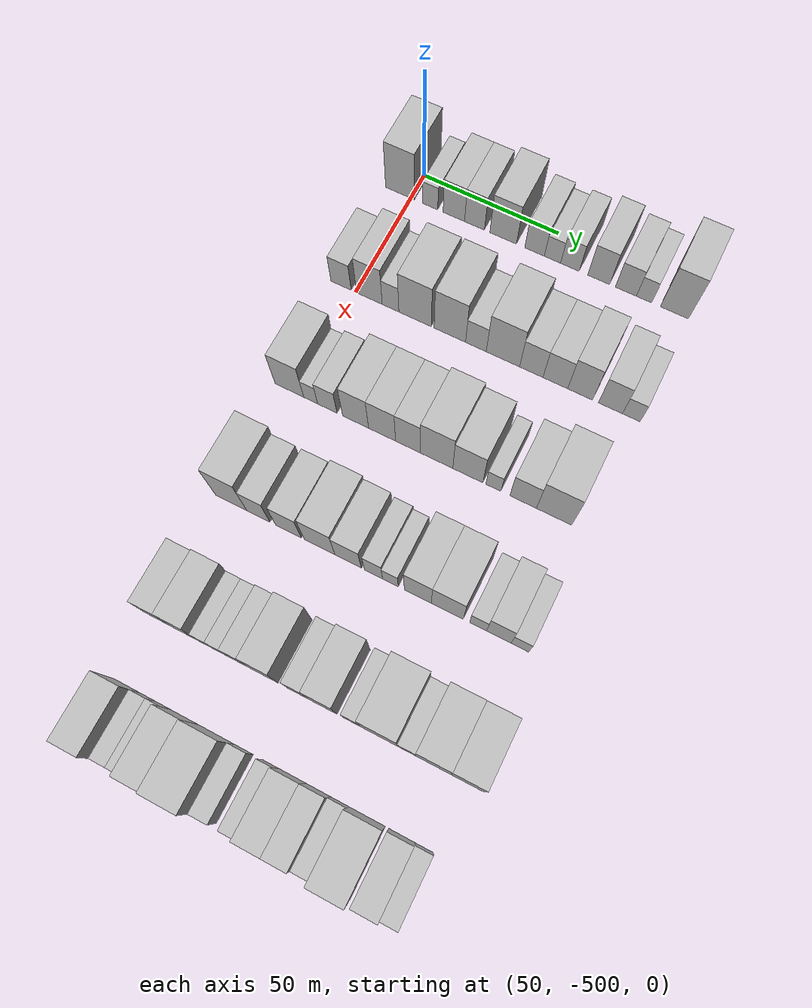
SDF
<sdf version="1.6">
 <world name="default">
  <model name="building_13">
   <static>1</static>
   <pose>50.0000 -504.2278 0 0.000000 0.000000 0.000000</pose>
   <link name="link">
    <pose>0 0 12.00 0 0 0</pose>
    <collision name="collision"><geometry><box><size>20.0000 11.0009 24.0000</size></box></geometry></collision>
    <visual name="visual">
     <cast_shadows>0</cast_shadows>
     <geometry><box><size>20.0000 11.0009 24.0000</size></box></geometry>
     <material>
      <script>
       <uri>model://HANNAS_wall/materials/scripts</uri>
       <uri>model://HANNAS_wall/materials/textures</uri>
       <name>vrc/HANNAS_wall</name>
      </script>
     </material>
    </visual>
   </link>
  </model>
  <model name="building_14">
   <static>1</static>
   <pose>50.0000 -492.8610 0 0.000000 0.000000 0.000000</pose>
   <link name="link">
    <pose>0 0 6.00 0 0 0</pose>
    <collision name="collision"><geometry><box><size>20.0000 5.7326 12.0000</size></box></geometry></collision>
    <visual name="visual">
     <cast_shadows>0</cast_shadows>
     <geometry><box><size>20.0000 5.7326 12.0000</size></box></geometry>
     <material>
      <script>
       <uri>model://HANNAS_wall/materials/scripts</uri>
       <uri>model://HANNAS_wall/materials/textures</uri>
       <name>vrc/HANNAS_wall</name>
      </script>
     </material>
    </visual>
   </link>
  </model>
  <model name="building_15">
   <static>1</static>
   <pose>50.0000 -483.9732 0 0.000000 0.000000 0.000000</pose>
   <link name="link">
    <pose>0 0 9.00 0 0 0</pose>
    <collision name="collision"><geometry><box><size>20.0000 8.0430 18.0000</size></box></geometry></collision>
    <visual name="visual">
     <cast_shadows>0</cast_shadows>
     <geometry><box><size>20.0000 8.0430 18.0000</size></box></geometry>
     <material>
      <script>
       <uri>model://HANNAS_wall/materials/scripts</uri>
       <uri>model://HANNAS_wall/materials/textures</uri>
       <name>vrc/HANNAS_wall</name>
      </script>
     </material>
    </visual>
   </link>
  </model>
  <model name="building_16">
   <static>1</static>
   <pose>50.0000 -476.2704 0 0.000000 0.000000 0.000000</pose>
   <link name="link">
    <pose>0 0 9.00 0 0 0</pose>
    <collision name="collision"><geometry><box><size>20.0000 7.3626 18.0000</size></box></geometry></collision>
    <visual name="visual">
     <cast_shadows>0</cast_shadows>
     <geometry><box><size>20.0000 7.3626 18.0000</size></box></geometry>
     <material>
      <script>
       <uri>model://HANNAS_wall/materials/scripts</uri>
       <uri>model://HANNAS_wall/materials/textures</uri>
       <name>vrc/HANNAS_wall</name>
      </script>
     </material>
    </visual>
   </link>
  </model>
  <model name="building_17">
   <static>1</static>
   <pose>50.0000 -465.6922 0 0.000000 0.000000 0.000000</pose>
   <link name="link">
    <pose>0 0 10.50 0 0 0</pose>
    <collision name="collision"><geometry><box><size>20.0000 9.7939 21.0000</size></box></geometry></collision>
    <visual name="visual">
     <cast_shadows>0</cast_shadows>
     <geometry><box><size>20.0000 9.7939 21.0000</size></box></geometry>
     <material>
      <script>
       <uri>model://HANNAS_wall/materials/scripts</uri>
       <uri>model://HANNAS_wall/materials/textures</uri>
       <name>vrc/HANNAS_wall</name>
      </script>
     </material>
    </visual>
   </link>
  </model>
  <model name="building_18">
   <static>1</static>
   <pose>50.0000 -454.2180 0 0.000000 0.000000 0.000000</pose>
   <link name="link">
    <pose>0 0 7.50 0 0 0</pose>
    <collision name="collision"><geometry><box><size>20.0000 7.1545 15.0000</size></box></geometry></collision>
    <visual name="visual">
     <cast_shadows>0</cast_shadows>
     <geometry><box><size>20.0000 7.1545 15.0000</size></box></geometry>
     <material>
      <script>
       <uri>model://HANNAS_wall/materials/scripts</uri>
       <uri>model://HANNAS_wall/materials/textures</uri>
       <name>vrc/HANNAS_wall</name>
      </script>
     </material>
    </visual>
   </link>
  </model>
  <model name="building_19">
   <static>1</static>
   <pose>50.0000 -447.7025 0 0.000000 0.000000 0.000000</pose>
   <link name="link">
    <pose>0 0 6.00 0 0 0</pose>
    <collision name="collision"><geometry><box><size>20.0000 5.8765 12.0000</size></box></geometry></collision>
    <visual name="visual">
     <cast_shadows>0</cast_shadows>
     <geometry><box><size>20.0000 5.8765 12.0000</size></box></geometry>
     <material>
      <script>
       <uri>model://HANNAS_wall/materials/scripts</uri>
       <uri>model://HANNAS_wall/materials/textures</uri>
       <name>vrc/HANNAS_wall</name>
      </script>
     </material>
    </visual>
   </link>
  </model>
  <model name="building_20">
   <static>1</static>
   <pose>50.0000 -441.4092 0 0.000000 0.000000 0.000000</pose>
   <link name="link">
    <pose>0 0 7.50 0 0 0</pose>
    <collision name="collision"><geometry><box><size>20.0000 6.7101 15.0000</size></box></geometry></collision>
    <visual name="visual">
     <cast_shadows>0</cast_shadows>
     <geometry><box><size>20.0000 6.7101 15.0000</size></box></geometry>
     <material>
      <script>
       <uri>model://HANNAS_wall/materials/scripts</uri>
       <uri>model://HANNAS_wall/materials/textures</uri>
       <name>vrc/HANNAS_wall</name>
      </script>
     </material>
    </visual>
   </link>
  </model>
  <model name="building_21">
   <static>1</static>
   <pose>50.0000 -431.1350 0 0.000000 0.000000 0.000000</pose>
   <link name="link">
    <pose>0 0 9.00 0 0 0</pose>
    <collision name="collision"><geometry><box><size>20.0000 7.8383 18.0000</size></box></geometry></collision>
    <visual name="visual">
     <cast_shadows>0</cast_shadows>
     <geometry><box><size>20.0000 7.8383 18.0000</size></box></geometry>
     <material>
      <script>
       <uri>model://HANNAS_wall/materials/scripts</uri>
       <uri>model://HANNAS_wall/materials/textures</uri>
       <name>vrc/HANNAS_wall</name>
      </script>
     </material>
    </visual>
   </link>
  </model>
  <model name="building_22">
   <static>1</static>
   <pose>50.0000 -421.5041 0 0.000000 0.000000 0.000000</pose>
   <link name="link">
    <pose>0 0 7.50 0 0 0</pose>
    <collision name="collision"><geometry><box><size>20.0000 7.4234 15.0000</size></box></geometry></collision>
    <visual name="visual">
     <cast_shadows>0</cast_shadows>
     <geometry><box><size>20.0000 7.4234 15.0000</size></box></geometry>
     <material>
      <script>
       <uri>model://HANNAS_wall/materials/scripts</uri>
       <uri>model://HANNAS_wall/materials/textures</uri>
       <name>vrc/HANNAS_wall</name>
      </script>
     </material>
    </visual>
   </link>
  </model>
  <model name="building_23">
   <static>1</static>
   <pose>50.0000 -415.0984 0 0.000000 0.000000 0.000000</pose>
   <link name="link">
    <pose>0 0 6.00 0 0 0</pose>
    <collision name="collision"><geometry><box><size>20.0000 5.3878 12.0000</size></box></geometry></collision>
    <visual name="visual">
     <cast_shadows>0</cast_shadows>
     <geometry><box><size>20.0000 5.3878 12.0000</size></box></geometry>
     <material>
      <script>
       <uri>model://HANNAS_wall/materials/scripts</uri>
       <uri>model://HANNAS_wall/materials/textures</uri>
       <name>vrc/HANNAS_wall</name>
      </script>
     </material>
    </visual>
   </link>
  </model>
  <model name="building_24">
   <static>1</static>
   <pose>50.0000 -404.5170 0 0.000000 0.000000 0.000000</pose>
   <link name="link">
    <pose>0 0 12.00 0 0 0</pose>
    <collision name="collision"><geometry><box><size>20.0000 9.7752 24.0000</size></box></geometry></collision>
    <visual name="visual">
     <cast_shadows>0</cast_shadows>
     <geometry><box><size>20.0000 9.7752 24.0000</size></box></geometry>
     <material>
      <script>
       <uri>model://HANNAS_wall/materials/scripts</uri>
       <uri>model://HANNAS_wall/materials/textures</uri>
       <name>vrc/HANNAS_wall</name>
      </script>
     </material>
    </visual>
   </link>
  </model>
  <model name="building_140">
   <static>1</static>
   <pose>90.0000 -505.3310 0 0.000000 0.000000 0.000000</pose>
   <link name="link">
    <pose>0 0 7.50 0 0 0</pose>
    <collision name="collision"><geometry><box><size>20.0000 7.4866 15.0000</size></box></geometry></collision>
    <visual name="visual">
     <cast_shadows>0</cast_shadows>
     <geometry><box><size>20.0000 7.4866 15.0000</size></box></geometry>
     <material>
      <script>
       <uri>model://HANNAS_wall/materials/scripts</uri>
       <uri>model://HANNAS_wall/materials/textures</uri>
       <name>vrc/HANNAS_wall</name>
      </script>
     </material>
    </visual>
   </link>
  </model>
  <model name="building_141">
   <static>1</static>
   <pose>90.0000 -494.8805 0 0.000000 0.000000 0.000000</pose>
   <link name="link">
    <pose>0 0 10.50 0 0 0</pose>
    <collision name="collision"><geometry><box><size>20.0000 9.4144 21.0000</size></box></geometry></collision>
    <visual name="visual">
     <cast_shadows>0</cast_shadows>
     <geometry><box><size>20.0000 9.4144 21.0000</size></box></geometry>
     <material>
      <script>
       <uri>model://HANNAS_wall/materials/scripts</uri>
       <uri>model://HANNAS_wall/materials/textures</uri>
       <name>vrc/HANNAS_wall</name>
      </script>
     </material>
    </visual>
   </link>
  </model>
  <model name="building_142">
   <static>1</static>
   <pose>90.0000 -487.1313 0 0.000000 0.000000 0.000000</pose>
   <link name="link">
    <pose>0 0 7.50 0 0 0</pose>
    <collision name="collision"><geometry><box><size>20.0000 6.0840 15.0000</size></box></geometry></collision>
    <visual name="visual">
     <cast_shadows>0</cast_shadows>
     <geometry><box><size>20.0000 6.0840 15.0000</size></box></geometry>
     <material>
      <script>
       <uri>model://HANNAS_wall/materials/scripts</uri>
       <uri>model://HANNAS_wall/materials/textures</uri>
       <name>vrc/HANNAS_wall</name>
      </script>
     </material>
    </visual>
   </link>
  </model>
  <model name="building_143">
   <static>1</static>
   <pose>90.0000 -478.2230 0 0.000000 0.000000 0.000000</pose>
   <link name="link">
    <pose>0 0 12.00 0 0 0</pose>
    <collision name="collision"><geometry><box><size>20.0000 11.7326 24.0000</size></box></geometry></collision>
    <visual name="visual">
     <cast_shadows>0</cast_shadows>
     <geometry><box><size>20.0000 11.7326 24.0000</size></box></geometry>
     <material>
      <script>
       <uri>model://HANNAS_wall/materials/scripts</uri>
       <uri>model://HANNAS_wall/materials/textures</uri>
       <name>vrc/HANNAS_wall</name>
      </script>
     </material>
    </visual>
   </link>
  </model>
  <model name="building_144">
   <static>1</static>
   <pose>90.0000 -465.7295 0 0.000000 0.000000 0.000000</pose>
   <link name="link">
    <pose>0 0 12.00 0 0 0</pose>
    <collision name="collision"><geometry><box><size>20.0000 11.2543 24.0000</size></box></geometry></collision>
    <visual name="visual">
     <cast_shadows>0</cast_shadows>
     <geometry><box><size>20.0000 11.2543 24.0000</size></box></geometry>
     <material>
      <script>
       <uri>model://HANNAS_wall/materials/scripts</uri>
       <uri>model://HANNAS_wall/materials/textures</uri>
       <name>vrc/HANNAS_wall</name>
      </script>
     </material>
    </visual>
   </link>
  </model>
  <model name="building_145">
   <static>1</static>
   <pose>90.0000 -456.4521 0 0.000000 0.000000 0.000000</pose>
   <link name="link">
    <pose>0 0 7.50 0 0 0</pose>
    <collision name="collision"><geometry><box><size>20.0000 7.3006 15.0000</size></box></geometry></collision>
    <visual name="visual">
     <cast_shadows>0</cast_shadows>
     <geometry><box><size>20.0000 7.3006 15.0000</size></box></geometry>
     <material>
      <script>
       <uri>model://HANNAS_wall/materials/scripts</uri>
       <uri>model://HANNAS_wall/materials/textures</uri>
       <name>vrc/HANNAS_wall</name>
      </script>
     </material>
    </visual>
   </link>
  </model>
  <model name="building_146">
   <static>1</static>
   <pose>90.0000 -446.9369 0 0.000000 0.000000 0.000000</pose>
   <link name="link">
    <pose>0 0 12.00 0 0 0</pose>
    <collision name="collision"><geometry><box><size>20.0000 11.7297 24.0000</size></box></geometry></collision>
    <visual name="visual">
     <cast_shadows>0</cast_shadows>
     <geometry><box><size>20.0000 11.7297 24.0000</size></box></geometry>
     <material>
      <script>
       <uri>model://HANNAS_wall/materials/scripts</uri>
       <uri>model://HANNAS_wall/materials/textures</uri>
       <name>vrc/HANNAS_wall</name>
      </script>
     </material>
    </visual>
   </link>
  </model>
  <model name="building_147">
   <static>1</static>
   <pose>90.0000 -436.9981 0 0.000000 0.000000 0.000000</pose>
   <link name="link">
    <pose>0 0 9.00 0 0 0</pose>
    <collision name="collision"><geometry><box><size>20.0000 8.1479 18.0000</size></box></geometry></collision>
    <visual name="visual">
     <cast_shadows>0</cast_shadows>
     <geometry><box><size>20.0000 8.1479 18.0000</size></box></geometry>
     <material>
      <script>
       <uri>model://HANNAS_wall/materials/scripts</uri>
       <uri>model://HANNAS_wall/materials/textures</uri>
       <name>vrc/HANNAS_wall</name>
      </script>
     </material>
    </visual>
   </link>
  </model>
  <model name="building_148">
   <static>1</static>
   <pose>90.0000 -428.6732 0 0.000000 0.000000 0.000000</pose>
   <link name="link">
    <pose>0 0 9.00 0 0 0</pose>
    <collision name="collision"><geometry><box><size>20.0000 8.5019 18.0000</size></box></geometry></collision>
    <visual name="visual">
     <cast_shadows>0</cast_shadows>
     <geometry><box><size>20.0000 8.5019 18.0000</size></box></geometry>
     <material>
      <script>
       <uri>model://HANNAS_wall/materials/scripts</uri>
       <uri>model://HANNAS_wall/materials/textures</uri>
       <name>vrc/HANNAS_wall</name>
      </script>
     </material>
    </visual>
   </link>
  </model>
  <model name="building_149">
   <static>1</static>
   <pose>90.0000 -420.1610 0 0.000000 0.000000 0.000000</pose>
   <link name="link">
    <pose>0 0 10.50 0 0 0</pose>
    <collision name="collision"><geometry><box><size>20.0000 8.5224 21.0000</size></box></geometry></collision>
    <visual name="visual">
     <cast_shadows>0</cast_shadows>
     <geometry><box><size>20.0000 8.5224 21.0000</size></box></geometry>
     <material>
      <script>
       <uri>model://HANNAS_wall/materials/scripts</uri>
       <uri>model://HANNAS_wall/materials/textures</uri>
       <name>vrc/HANNAS_wall</name>
      </script>
     </material>
    </visual>
   </link>
  </model>
  <model name="building_150">
   <static>1</static>
   <pose>90.0000 -409.8453 0 0.000000 0.000000 0.000000</pose>
   <link name="link">
    <pose>0 0 9.00 0 0 0</pose>
    <collision name="collision"><geometry><box><size>20.0000 8.1091 18.0000</size></box></geometry></collision>
    <visual name="visual">
     <cast_shadows>0</cast_shadows>
     <geometry><box><size>20.0000 8.1091 18.0000</size></box></geometry>
     <material>
      <script>
       <uri>model://HANNAS_wall/materials/scripts</uri>
       <uri>model://HANNAS_wall/materials/textures</uri>
       <name>vrc/HANNAS_wall</name>
      </script>
     </material>
    </visual>
   </link>
  </model>
  <model name="building_151">
   <static>1</static>
   <pose>90.0000 -402.8060 0 0.000000 0.000000 0.000000</pose>
   <link name="link">
    <pose>0 0 6.00 0 0 0</pose>
    <collision name="collision"><geometry><box><size>20.0000 5.9694 12.0000</size></box></geometry></collision>
    <visual name="visual">
     <cast_shadows>0</cast_shadows>
     <geometry><box><size>20.0000 5.9694 12.0000</size></box></geometry>
     <material>
      <script>
       <uri>model://HANNAS_wall/materials/scripts</uri>
       <uri>model://HANNAS_wall/materials/textures</uri>
       <name>vrc/HANNAS_wall</name>
      </script>
     </material>
    </visual>
   </link>
  </model>
  <model name="building_277">
   <static>1</static>
   <pose>130.0000 -502.1205 0 0.000000 0.000000 0.000000</pose>
   <link name="link">
    <pose>0 0 10.50 0 0 0</pose>
    <collision name="collision"><geometry><box><size>20.0000 10.3047 21.0000</size></box></geometry></collision>
    <visual name="visual">
     <cast_shadows>0</cast_shadows>
     <geometry><box><size>20.0000 10.3047 21.0000</size></box></geometry>
     <material>
      <script>
       <uri>model://HANNAS_wall/materials/scripts</uri>
       <uri>model://HANNAS_wall/materials/textures</uri>
       <name>vrc/HANNAS_wall</name>
      </script>
     </material>
    </visual>
   </link>
  </model>
  <model name="building_278">
   <static>1</static>
   <pose>130.0000 -494.4860 0 0.000000 0.000000 0.000000</pose>
   <link name="link">
    <pose>0 0 6.00 0 0 0</pose>
    <collision name="collision"><geometry><box><size>20.0000 4.9641 12.0000</size></box></geometry></collision>
    <visual name="visual">
     <cast_shadows>0</cast_shadows>
     <geometry><box><size>20.0000 4.9641 12.0000</size></box></geometry>
     <material>
      <script>
       <uri>model://HANNAS_wall/materials/scripts</uri>
       <uri>model://HANNAS_wall/materials/textures</uri>
       <name>vrc/HANNAS_wall</name>
      </script>
     </material>
    </visual>
   </link>
  </model>
  <model name="building_279">
   <static>1</static>
   <pose>130.0000 -488.5637 0 0.000000 0.000000 0.000000</pose>
   <link name="link">
    <pose>0 0 7.50 0 0 0</pose>
    <collision name="collision"><geometry><box><size>20.0000 6.8806 15.0000</size></box></geometry></collision>
    <visual name="visual">
     <cast_shadows>0</cast_shadows>
     <geometry><box><size>20.0000 6.8806 15.0000</size></box></geometry>
     <material>
      <script>
       <uri>model://HANNAS_wall/materials/scripts</uri>
       <uri>model://HANNAS_wall/materials/textures</uri>
       <name>vrc/HANNAS_wall</name>
      </script>
     </material>
    </visual>
   </link>
  </model>
  <model name="building_280">
   <static>1</static>
   <pose>130.0000 -478.5686 0 0.000000 0.000000 0.000000</pose>
   <link name="link">
    <pose>0 0 10.50 0 0 0</pose>
    <collision name="collision"><geometry><box><size>20.0000 9.1095 21.0000</size></box></geometry></collision>
    <visual name="visual">
     <cast_shadows>0</cast_shadows>
     <geometry><box><size>20.0000 9.1095 21.0000</size></box></geometry>
     <material>
      <script>
       <uri>model://HANNAS_wall/materials/scripts</uri>
       <uri>model://HANNAS_wall/materials/textures</uri>
       <name>vrc/HANNAS_wall</name>
      </script>
     </material>
    </visual>
   </link>
  </model>
  <model name="building_281">
   <static>1</static>
   <pose>130.0000 -469.3165 0 0.000000 0.000000 0.000000</pose>
   <link name="link">
    <pose>0 0 10.50 0 0 0</pose>
    <collision name="collision"><geometry><box><size>20.0000 9.3947 21.0000</size></box></geometry></collision>
    <visual name="visual">
     <cast_shadows>0</cast_shadows>
     <geometry><box><size>20.0000 9.3947 21.0000</size></box></geometry>
     <material>
      <script>
       <uri>model://HANNAS_wall/materials/scripts</uri>
       <uri>model://HANNAS_wall/materials/textures</uri>
       <name>vrc/HANNAS_wall</name>
      </script>
     </material>
    </visual>
   </link>
  </model>
  <model name="building_282">
   <static>1</static>
   <pose>130.0000 -460.3309 0 0.000000 0.000000 0.000000</pose>
   <link name="link">
    <pose>0 0 10.50 0 0 0</pose>
    <collision name="collision"><geometry><box><size>20.0000 8.5766 21.0000</size></box></geometry></collision>
    <visual name="visual">
     <cast_shadows>0</cast_shadows>
     <geometry><box><size>20.0000 8.5766 21.0000</size></box></geometry>
     <material>
      <script>
       <uri>model://HANNAS_wall/materials/scripts</uri>
       <uri>model://HANNAS_wall/materials/textures</uri>
       <name>vrc/HANNAS_wall</name>
      </script>
     </material>
    </visual>
   </link>
  </model>
  <model name="building_283">
   <static>1</static>
   <pose>130.0000 -450.5161 0 0.000000 0.000000 0.000000</pose>
   <link name="link">
    <pose>0 0 12.00 0 0 0</pose>
    <collision name="collision"><geometry><box><size>20.0000 11.0530 24.0000</size></box></geometry></collision>
    <visual name="visual">
     <cast_shadows>0</cast_shadows>
     <geometry><box><size>20.0000 11.0530 24.0000</size></box></geometry>
     <material>
      <script>
       <uri>model://HANNAS_wall/materials/scripts</uri>
       <uri>model://HANNAS_wall/materials/textures</uri>
       <name>vrc/HANNAS_wall</name>
      </script>
     </material>
    </visual>
   </link>
  </model>
  <model name="building_284">
   <static>1</static>
   <pose>130.0000 -439.8883 0 0.000000 0.000000 0.000000</pose>
   <link name="link">
    <pose>0 0 10.50 0 0 0</pose>
    <collision name="collision"><geometry><box><size>20.0000 10.2027 21.0000</size></box></geometry></collision>
    <visual name="visual">
     <cast_shadows>0</cast_shadows>
     <geometry><box><size>20.0000 10.2027 21.0000</size></box></geometry>
     <material>
      <script>
       <uri>model://HANNAS_wall/materials/scripts</uri>
       <uri>model://HANNAS_wall/materials/textures</uri>
       <name>vrc/HANNAS_wall</name>
      </script>
     </material>
    </visual>
   </link>
  </model>
  <model name="building_285">
   <static>1</static>
   <pose>130.0000 -431.2606 0 0.000000 0.000000 0.000000</pose>
   <link name="link">
    <pose>0 0 6.00 0 0 0</pose>
    <collision name="collision"><geometry><box><size>20.0000 5.0526 12.0000</size></box></geometry></collision>
    <visual name="visual">
     <cast_shadows>0</cast_shadows>
     <geometry><box><size>20.0000 5.0526 12.0000</size></box></geometry>
     <material>
      <script>
       <uri>model://HANNAS_wall/materials/scripts</uri>
       <uri>model://HANNAS_wall/materials/textures</uri>
       <name>vrc/HANNAS_wall</name>
      </script>
     </material>
    </visual>
   </link>
  </model>
  <model name="building_286">
   <static>1</static>
   <pose>130.0000 -421.3273 0 0.000000 0.000000 0.000000</pose>
   <link name="link">
    <pose>0 0 9.00 0 0 0</pose>
    <collision name="collision"><geometry><box><size>20.0000 8.8140 18.0000</size></box></geometry></collision>
    <visual name="visual">
     <cast_shadows>0</cast_shadows>
     <geometry><box><size>20.0000 8.8140 18.0000</size></box></geometry>
     <material>
      <script>
       <uri>model://HANNAS_wall/materials/scripts</uri>
       <uri>model://HANNAS_wall/materials/textures</uri>
       <name>vrc/HANNAS_wall</name>
      </script>
     </material>
    </visual>
   </link>
  </model>
  <model name="building_287">
   <static>1</static>
   <pose>130.0000 -411.1081 0 0.000000 0.000000 0.000000</pose>
   <link name="link">
    <pose>0 0 12.00 0 0 0</pose>
    <collision name="collision"><geometry><box><size>20.0000 11.6244 24.0000</size></box></geometry></collision>
    <visual name="visual">
     <cast_shadows>0</cast_shadows>
     <geometry><box><size>20.0000 11.6244 24.0000</size></box></geometry>
     <material>
      <script>
       <uri>model://HANNAS_wall/materials/scripts</uri>
       <uri>model://HANNAS_wall/materials/textures</uri>
       <name>vrc/HANNAS_wall</name>
      </script>
     </material>
    </visual>
   </link>
  </model>
  <model name="building_411">
   <static>1</static>
   <pose>170.0000 -499.7130 0 0.000000 0.000000 0.000000</pose>
   <link name="link">
    <pose>0 0 12.00 0 0 0</pose>
    <collision name="collision"><geometry><box><size>20.0000 10.9599 24.0000</size></box></geometry></collision>
    <visual name="visual">
     <cast_shadows>0</cast_shadows>
     <geometry><box><size>20.0000 10.9599 24.0000</size></box></geometry>
     <material>
      <script>
       <uri>model://HANNAS_wall/materials/scripts</uri>
       <uri>model://HANNAS_wall/materials/textures</uri>
       <name>vrc/HANNAS_wall</name>
      </script>
     </material>
    </visual>
   </link>
  </model>
  <model name="building_412">
   <static>1</static>
   <pose>170.0000 -490.2538 0 0.000000 0.000000 0.000000</pose>
   <link name="link">
    <pose>0 0 9.00 0 0 0</pose>
    <collision name="collision"><geometry><box><size>20.0000 7.9586 18.0000</size></box></geometry></collision>
    <visual name="visual">
     <cast_shadows>0</cast_shadows>
     <geometry><box><size>20.0000 7.9586 18.0000</size></box></geometry>
     <material>
      <script>
       <uri>model://HANNAS_wall/materials/scripts</uri>
       <uri>model://HANNAS_wall/materials/textures</uri>
       <name>vrc/HANNAS_wall</name>
      </script>
     </material>
    </visual>
   </link>
  </model>
  <model name="building_413">
   <static>1</static>
   <pose>170.0000 -479.9017 0 0.000000 0.000000 0.000000</pose>
   <link name="link">
    <pose>0 0 9.00 0 0 0</pose>
    <collision name="collision"><geometry><box><size>20.0000 8.7455 18.0000</size></box></geometry></collision>
    <visual name="visual">
     <cast_shadows>0</cast_shadows>
     <geometry><box><size>20.0000 8.7455 18.0000</size></box></geometry>
     <material>
      <script>
       <uri>model://HANNAS_wall/materials/scripts</uri>
       <uri>model://HANNAS_wall/materials/textures</uri>
       <name>vrc/HANNAS_wall</name>
      </script>
     </material>
    </visual>
   </link>
  </model>
  <model name="building_414">
   <static>1</static>
   <pose>170.0000 -469.3148 0 0.000000 0.000000 0.000000</pose>
   <link name="link">
    <pose>0 0 10.50 0 0 0</pose>
    <collision name="collision"><geometry><box><size>20.0000 10.4283 21.0000</size></box></geometry></collision>
    <visual name="visual">
     <cast_shadows>0</cast_shadows>
     <geometry><box><size>20.0000 10.4283 21.0000</size></box></geometry>
     <material>
      <script>
       <uri>model://HANNAS_wall/materials/scripts</uri>
       <uri>model://HANNAS_wall/materials/textures</uri>
       <name>vrc/HANNAS_wall</name>
      </script>
     </material>
    </visual>
   </link>
  </model>
  <model name="building_415">
   <static>1</static>
   <pose>170.0000 -459.6818 0 0.000000 0.000000 0.000000</pose>
   <link name="link">
    <pose>0 0 9.00 0 0 0</pose>
    <collision name="collision"><geometry><box><size>20.0000 8.8376 18.0000</size></box></geometry></collision>
    <visual name="visual">
     <cast_shadows>0</cast_shadows>
     <geometry><box><size>20.0000 8.8376 18.0000</size></box></geometry>
     <material>
      <script>
       <uri>model://HANNAS_wall/materials/scripts</uri>
       <uri>model://HANNAS_wall/materials/textures</uri>
       <name>vrc/HANNAS_wall</name>
      </script>
     </material>
    </visual>
   </link>
  </model>
  <model name="building_416">
   <static>1</static>
   <pose>170.0000 -451.2604 0 0.000000 0.000000 0.000000</pose>
   <link name="link">
    <pose>0 0 7.50 0 0 0</pose>
    <collision name="collision"><geometry><box><size>20.0000 6.0052 15.0000</size></box></geometry></collision>
    <visual name="visual">
     <cast_shadows>0</cast_shadows>
     <geometry><box><size>20.0000 6.0052 15.0000</size></box></geometry>
     <material>
      <script>
       <uri>model://HANNAS_wall/materials/scripts</uri>
       <uri>model://HANNAS_wall/materials/textures</uri>
       <name>vrc/HANNAS_wall</name>
      </script>
     </material>
    </visual>
   </link>
  </model>
  <model name="building_417">
   <static>1</static>
   <pose>170.0000 -445.6560 0 0.000000 0.000000 0.000000</pose>
   <link name="link">
    <pose>0 0 6.00 0 0 0</pose>
    <collision name="collision"><geometry><box><size>20.0000 5.2037 12.0000</size></box></geometry></collision>
    <visual name="visual">
     <cast_shadows>0</cast_shadows>
     <geometry><box><size>20.0000 5.2037 12.0000</size></box></geometry>
     <material>
      <script>
       <uri>model://HANNAS_wall/materials/scripts</uri>
       <uri>model://HANNAS_wall/materials/textures</uri>
       <name>vrc/HANNAS_wall</name>
      </script>
     </material>
    </visual>
   </link>
  </model>
  <model name="building_418">
   <static>1</static>
   <pose>170.0000 -436.6261 0 0.000000 0.000000 0.000000</pose>
   <link name="link">
    <pose>0 0 10.50 0 0 0</pose>
    <collision name="collision"><geometry><box><size>20.0000 8.8560 21.0000</size></box></geometry></collision>
    <visual name="visual">
     <cast_shadows>0</cast_shadows>
     <geometry><box><size>20.0000 8.8560 21.0000</size></box></geometry>
     <material>
      <script>
       <uri>model://HANNAS_wall/materials/scripts</uri>
       <uri>model://HANNAS_wall/materials/textures</uri>
       <name>vrc/HANNAS_wall</name>
      </script>
     </material>
    </visual>
   </link>
  </model>
  <model name="building_419">
   <static>1</static>
   <pose>170.0000 -427.0350 0 0.000000 0.000000 0.000000</pose>
   <link name="link">
    <pose>0 0 10.50 0 0 0</pose>
    <collision name="collision"><geometry><box><size>20.0000 10.3263 21.0000</size></box></geometry></collision>
    <visual name="visual">
     <cast_shadows>0</cast_shadows>
     <geometry><box><size>20.0000 10.3263 21.0000</size></box></geometry>
     <material>
      <script>
       <uri>model://HANNAS_wall/materials/scripts</uri>
       <uri>model://HANNAS_wall/materials/textures</uri>
       <name>vrc/HANNAS_wall</name>
      </script>
     </material>
    </visual>
   </link>
  </model>
  <model name="building_420">
   <static>1</static>
   <pose>170.0000 -417.1323 0 0.000000 0.000000 0.000000</pose>
   <link name="link">
    <pose>0 0 6.00 0 0 0</pose>
    <collision name="collision"><geometry><box><size>20.0000 5.4792 12.0000</size></box></geometry></collision>
    <visual name="visual">
     <cast_shadows>0</cast_shadows>
     <geometry><box><size>20.0000 5.4792 12.0000</size></box></geometry>
     <material>
      <script>
       <uri>model://HANNAS_wall/materials/scripts</uri>
       <uri>model://HANNAS_wall/materials/textures</uri>
       <name>vrc/HANNAS_wall</name>
      </script>
     </material>
    </visual>
   </link>
  </model>
  <model name="building_421">
   <static>1</static>
   <pose>170.0000 -410.5099 0 0.000000 0.000000 0.000000</pose>
   <link name="link">
    <pose>0 0 9.00 0 0 0</pose>
    <collision name="collision"><geometry><box><size>20.0000 7.7656 18.0000</size></box></geometry></collision>
    <visual name="visual">
     <cast_shadows>0</cast_shadows>
     <geometry><box><size>20.0000 7.7656 18.0000</size></box></geometry>
     <material>
      <script>
       <uri>model://HANNAS_wall/materials/scripts</uri>
       <uri>model://HANNAS_wall/materials/textures</uri>
       <name>vrc/HANNAS_wall</name>
      </script>
     </material>
    </visual>
   </link>
  </model>
  <model name="building_422">
   <static>1</static>
   <pose>170.0000 -403.8249 0 0.000000 0.000000 0.000000</pose>
   <link name="link">
    <pose>0 0 6.00 0 0 0</pose>
    <collision name="collision"><geometry><box><size>20.0000 5.6044 12.0000</size></box></geometry></collision>
    <visual name="visual">
     <cast_shadows>0</cast_shadows>
     <geometry><box><size>20.0000 5.6044 12.0000</size></box></geometry>
     <material>
      <script>
       <uri>model://HANNAS_wall/materials/scripts</uri>
       <uri>model://HANNAS_wall/materials/textures</uri>
       <name>vrc/HANNAS_wall</name>
      </script>
     </material>
    </visual>
   </link>
  </model>
  <model name="building_550">
   <static>1</static>
   <pose>210.0000 -500.6793 0 0.000000 0.000000 0.000000</pose>
   <link name="link">
    <pose>0 0 9.00 0 0 0</pose>
    <collision name="collision"><geometry><box><size>20.0000 8.8031 18.0000</size></box></geometry></collision>
    <visual name="visual">
     <cast_shadows>0</cast_shadows>
     <geometry><box><size>20.0000 8.8031 18.0000</size></box></geometry>
     <material>
      <script>
       <uri>model://HANNAS_wall/materials/scripts</uri>
       <uri>model://HANNAS_wall/materials/textures</uri>
       <name>vrc/HANNAS_wall</name>
      </script>
     </material>
    </visual>
   </link>
  </model>
  <model name="building_551">
   <static>1</static>
   <pose>210.0000 -491.7577 0 0.000000 0.000000 0.000000</pose>
   <link name="link">
    <pose>0 0 10.50 0 0 0</pose>
    <collision name="collision"><geometry><box><size>20.0000 9.0401 21.0000</size></box></geometry></collision>
    <visual name="visual">
     <cast_shadows>0</cast_shadows>
     <geometry><box><size>20.0000 9.0401 21.0000</size></box></geometry>
     <material>
      <script>
       <uri>model://HANNAS_wall/materials/scripts</uri>
       <uri>model://HANNAS_wall/materials/textures</uri>
       <name>vrc/HANNAS_wall</name>
      </script>
     </material>
    </visual>
   </link>
  </model>
  <model name="building_552">
   <static>1</static>
   <pose>210.0000 -484.7983 0 0.000000 0.000000 0.000000</pose>
   <link name="link">
    <pose>0 0 6.00 0 0 0</pose>
    <collision name="collision"><geometry><box><size>20.0000 4.8787 12.0000</size></box></geometry></collision>
    <visual name="visual">
     <cast_shadows>0</cast_shadows>
     <geometry><box><size>20.0000 4.8787 12.0000</size></box></geometry>
     <material>
      <script>
       <uri>model://HANNAS_wall/materials/scripts</uri>
       <uri>model://HANNAS_wall/materials/textures</uri>
       <name>vrc/HANNAS_wall</name>
      </script>
     </material>
    </visual>
   </link>
  </model>
  <model name="building_553">
   <static>1</static>
   <pose>210.0000 -479.7557 0 0.000000 0.000000 0.000000</pose>
   <link name="link">
    <pose>0 0 6.00 0 0 0</pose>
    <collision name="collision"><geometry><box><size>20.0000 5.2065 12.0000</size></box></geometry></collision>
    <visual name="visual">
     <cast_shadows>0</cast_shadows>
     <geometry><box><size>20.0000 5.2065 12.0000</size></box></geometry>
     <material>
      <script>
       <uri>model://HANNAS_wall/materials/scripts</uri>
       <uri>model://HANNAS_wall/materials/textures</uri>
       <name>vrc/HANNAS_wall</name>
      </script>
     </material>
    </visual>
   </link>
  </model>
  <model name="building_554">
   <static>1</static>
   <pose>210.0000 -473.7199 0 0.000000 0.000000 0.000000</pose>
   <link name="link">
    <pose>0 0 7.50 0 0 0</pose>
    <collision name="collision"><geometry><box><size>20.0000 6.8651 15.0000</size></box></geometry></collision>
    <visual name="visual">
     <cast_shadows>0</cast_shadows>
     <geometry><box><size>20.0000 6.8651 15.0000</size></box></geometry>
     <material>
      <script>
       <uri>model://HANNAS_wall/materials/scripts</uri>
       <uri>model://HANNAS_wall/materials/textures</uri>
       <name>vrc/HANNAS_wall</name>
      </script>
     </material>
    </visual>
   </link>
  </model>
  <model name="building_555">
   <static>1</static>
   <pose>210.0000 -465.5345 0 0.000000 0.000000 0.000000</pose>
   <link name="link">
    <pose>0 0 10.50 0 0 0</pose>
    <collision name="collision"><geometry><box><size>20.0000 9.5057 21.0000</size></box></geometry></collision>
    <visual name="visual">
     <cast_shadows>0</cast_shadows>
     <geometry><box><size>20.0000 9.5057 21.0000</size></box></geometry>
     <material>
      <script>
       <uri>model://HANNAS_wall/materials/scripts</uri>
       <uri>model://HANNAS_wall/materials/textures</uri>
       <name>vrc/HANNAS_wall</name>
      </script>
     </material>
    </visual>
   </link>
  </model>
  <model name="building_556">
   <static>1</static>
   <pose>210.0000 -454.4207 0 0.000000 0.000000 0.000000</pose>
   <link name="link">
    <pose>0 0 7.50 0 0 0</pose>
    <collision name="collision"><geometry><box><size>20.0000 6.7220 15.0000</size></box></geometry></collision>
    <visual name="visual">
     <cast_shadows>0</cast_shadows>
     <geometry><box><size>20.0000 6.7220 15.0000</size></box></geometry>
     <material>
      <script>
       <uri>model://HANNAS_wall/materials/scripts</uri>
       <uri>model://HANNAS_wall/materials/textures</uri>
       <name>vrc/HANNAS_wall</name>
      </script>
     </material>
    </visual>
   </link>
  </model>
  <model name="building_557">
   <static>1</static>
   <pose>210.0000 -446.4244 0 0.000000 0.000000 0.000000</pose>
   <link name="link">
    <pose>0 0 10.50 0 0 0</pose>
    <collision name="collision"><geometry><box><size>20.0000 9.2705 21.0000</size></box></geometry></collision>
    <visual name="visual">
     <cast_shadows>0</cast_shadows>
     <geometry><box><size>20.0000 9.2705 21.0000</size></box></geometry>
     <material>
      <script>
       <uri>model://HANNAS_wall/materials/scripts</uri>
       <uri>model://HANNAS_wall/materials/textures</uri>
       <name>vrc/HANNAS_wall</name>
      </script>
     </material>
    </visual>
   </link>
  </model>
  <model name="building_558">
   <static>1</static>
   <pose>210.0000 -437.0350 0 0.000000 0.000000 0.000000</pose>
   <link name="link">
    <pose>0 0 6.00 0 0 0</pose>
    <collision name="collision"><geometry><box><size>20.0000 5.5083 12.0000</size></box></geometry></collision>
    <visual name="visual">
     <cast_shadows>0</cast_shadows>
     <geometry><box><size>20.0000 5.5083 12.0000</size></box></geometry>
     <material>
      <script>
       <uri>model://HANNAS_wall/materials/scripts</uri>
       <uri>model://HANNAS_wall/materials/textures</uri>
       <name>vrc/HANNAS_wall</name>
      </script>
     </material>
    </visual>
   </link>
  </model>
  <model name="building_559">
   <static>1</static>
   <pose>210.0000 -428.4202 0 0.000000 0.000000 0.000000</pose>
   <link name="link">
    <pose>0 0 12.00 0 0 0</pose>
    <collision name="collision"><geometry><box><size>20.0000 11.7213 24.0000</size></box></geometry></collision>
    <visual name="visual">
     <cast_shadows>0</cast_shadows>
     <geometry><box><size>20.0000 11.7213 24.0000</size></box></geometry>
     <material>
      <script>
       <uri>model://HANNAS_wall/materials/scripts</uri>
       <uri>model://HANNAS_wall/materials/textures</uri>
       <name>vrc/HANNAS_wall</name>
      </script>
     </material>
    </visual>
   </link>
  </model>
  <model name="building_560">
   <static>1</static>
   <pose>210.0000 -419.7382 0 0.000000 0.000000 0.000000</pose>
   <link name="link">
    <pose>0 0 6.00 0 0 0</pose>
    <collision name="collision"><geometry><box><size>20.0000 5.6427 12.0000</size></box></geometry></collision>
    <visual name="visual">
     <cast_shadows>0</cast_shadows>
     <geometry><box><size>20.0000 5.6427 12.0000</size></box></geometry>
     <material>
      <script>
       <uri>model://HANNAS_wall/materials/scripts</uri>
       <uri>model://HANNAS_wall/materials/textures</uri>
       <name>vrc/HANNAS_wall</name>
      </script>
     </material>
    </visual>
   </link>
  </model>
  <model name="building_561">
   <static>1</static>
   <pose>210.0000 -411.6842 0 0.000000 0.000000 0.000000</pose>
   <link name="link">
    <pose>0 0 12.00 0 0 0</pose>
    <collision name="collision"><geometry><box><size>20.0000 10.4654 24.0000</size></box></geometry></collision>
    <visual name="visual">
     <cast_shadows>0</cast_shadows>
     <geometry><box><size>20.0000 10.4654 24.0000</size></box></geometry>
     <material>
      <script>
       <uri>model://HANNAS_wall/materials/scripts</uri>
       <uri>model://HANNAS_wall/materials/textures</uri>
       <name>vrc/HANNAS_wall</name>
      </script>
     </material>
    </visual>
   </link>
  </model>
  <model name="building_562">
   <static>1</static>
   <pose>210.0000 -401.4768 0 0.000000 0.000000 0.000000</pose>
   <link name="link">
    <pose>0 0 12.00 0 0 0</pose>
    <collision name="collision"><geometry><box><size>20.0000 9.9495 24.0000</size></box></geometry></collision>
    <visual name="visual">
     <cast_shadows>0</cast_shadows>
     <geometry><box><size>20.0000 9.9495 24.0000</size></box></geometry>
     <material>
      <script>
       <uri>model://HANNAS_wall/materials/scripts</uri>
       <uri>model://HANNAS_wall/materials/textures</uri>
       <name>vrc/HANNAS_wall</name>
      </script>
     </material>
    </visual>
   </link>
  </model>
  <model name="building_685">
   <static>1</static>
   <pose>250.0000 -498.4775 0 0.000000 0.000000 0.000000</pose>
   <link name="link">
    <pose>0 0 10.50 0 0 0</pose>
    <collision name="collision"><geometry><box><size>20.0000 9.0809 21.0000</size></box></geometry></collision>
    <visual name="visual">
     <cast_shadows>0</cast_shadows>
     <geometry><box><size>20.0000 9.0809 21.0000</size></box></geometry>
     <material>
      <script>
       <uri>model://HANNAS_wall/materials/scripts</uri>
       <uri>model://HANNAS_wall/materials/textures</uri>
       <name>vrc/HANNAS_wall</name>
      </script>
     </material>
    </visual>
   </link>
  </model>
  <model name="building_686">
   <static>1</static>
   <pose>250.0000 -491.3676 0 0.000000 0.000000 0.000000</pose>
   <link name="link">
    <pose>0 0 6.00 0 0 0</pose>
    <collision name="collision"><geometry><box><size>20.0000 5.1388 12.0000</size></box></geometry></collision>
    <visual name="visual">
     <cast_shadows>0</cast_shadows>
     <geometry><box><size>20.0000 5.1388 12.0000</size></box></geometry>
     <material>
      <script>
       <uri>model://HANNAS_wall/materials/scripts</uri>
       <uri>model://HANNAS_wall/materials/textures</uri>
       <name>vrc/HANNAS_wall</name>
      </script>
     </material>
    </visual>
   </link>
  </model>
  <model name="building_687">
   <static>1</static>
   <pose>250.0000 -486.3882 0 0.000000 0.000000 0.000000</pose>
   <link name="link">
    <pose>0 0 6.00 0 0 0</pose>
    <collision name="collision"><geometry><box><size>20.0000 4.8199 12.0000</size></box></geometry></collision>
    <visual name="visual">
     <cast_shadows>0</cast_shadows>
     <geometry><box><size>20.0000 4.8199 12.0000</size></box></geometry>
     <material>
      <script>
       <uri>model://HANNAS_wall/materials/scripts</uri>
       <uri>model://HANNAS_wall/materials/textures</uri>
       <name>vrc/HANNAS_wall</name>
      </script>
     </material>
    </visual>
   </link>
  </model>
  <model name="building_688">
   <static>1</static>
   <pose>250.0000 -479.4905 0 0.000000 0.000000 0.000000</pose>
   <link name="link">
    <pose>0 0 10.50 0 0 0</pose>
    <collision name="collision"><geometry><box><size>20.0000 8.9755 21.0000</size></box></geometry></collision>
    <visual name="visual">
     <cast_shadows>0</cast_shadows>
     <geometry><box><size>20.0000 8.9755 21.0000</size></box></geometry>
     <material>
      <script>
       <uri>model://HANNAS_wall/materials/scripts</uri>
       <uri>model://HANNAS_wall/materials/textures</uri>
       <name>vrc/HANNAS_wall</name>
      </script>
     </material>
    </visual>
   </link>
  </model>
  <model name="building_689">
   <static>1</static>
   <pose>250.0000 -469.1414 0 0.000000 0.000000 0.000000</pose>
   <link name="link">
    <pose>0 0 12.00 0 0 0</pose>
    <collision name="collision"><geometry><box><size>20.0000 11.7227 24.0000</size></box></geometry></collision>
    <visual name="visual">
     <cast_shadows>0</cast_shadows>
     <geometry><box><size>20.0000 11.7227 24.0000</size></box></geometry>
     <material>
      <script>
       <uri>model://HANNAS_wall/materials/scripts</uri>
       <uri>model://HANNAS_wall/materials/textures</uri>
       <name>vrc/HANNAS_wall</name>
      </script>
     </material>
    </visual>
   </link>
  </model>
  <model name="building_690">
   <static>1</static>
   <pose>250.0000 -460.2936 0 0.000000 0.000000 0.000000</pose>
   <link name="link">
    <pose>0 0 6.00 0 0 0</pose>
    <collision name="collision"><geometry><box><size>20.0000 5.9728 12.0000</size></box></geometry></collision>
    <visual name="visual">
     <cast_shadows>0</cast_shadows>
     <geometry><box><size>20.0000 5.9728 12.0000</size></box></geometry>
     <material>
      <script>
       <uri>model://HANNAS_wall/materials/scripts</uri>
       <uri>model://HANNAS_wall/materials/textures</uri>
       <name>vrc/HANNAS_wall</name>
      </script>
     </material>
    </visual>
   </link>
  </model>
  <model name="building_691">
   <static>1</static>
   <pose>250.0000 -451.7624 0 0.000000 0.000000 0.000000</pose>
   <link name="link">
    <pose>0 0 6.00 0 0 0</pose>
    <collision name="collision"><geometry><box><size>20.0000 5.0896 12.0000</size></box></geometry></collision>
    <visual name="visual">
     <cast_shadows>0</cast_shadows>
     <geometry><box><size>20.0000 5.0896 12.0000</size></box></geometry>
     <material>
      <script>
       <uri>model://HANNAS_wall/materials/scripts</uri>
       <uri>model://HANNAS_wall/materials/textures</uri>
       <name>vrc/HANNAS_wall</name>
      </script>
     </material>
    </visual>
   </link>
  </model>
  <model name="building_692">
   <static>1</static>
   <pose>250.0000 -444.8359 0 0.000000 0.000000 0.000000</pose>
   <link name="link">
    <pose>0 0 9.00 0 0 0</pose>
    <collision name="collision"><geometry><box><size>20.0000 8.7635 18.0000</size></box></geometry></collision>
    <visual name="visual">
     <cast_shadows>0</cast_shadows>
     <geometry><box><size>20.0000 8.7635 18.0000</size></box></geometry>
     <material>
      <script>
       <uri>model://HANNAS_wall/materials/scripts</uri>
       <uri>model://HANNAS_wall/materials/textures</uri>
       <name>vrc/HANNAS_wall</name>
      </script>
     </material>
    </visual>
   </link>
  </model>
  <model name="building_693">
   <static>1</static>
   <pose>250.0000 -436.6196 0 0.000000 0.000000 0.000000</pose>
   <link name="link">
    <pose>0 0 9.00 0 0 0</pose>
    <collision name="collision"><geometry><box><size>20.0000 7.6689 18.0000</size></box></geometry></collision>
    <visual name="visual">
     <cast_shadows>0</cast_shadows>
     <geometry><box><size>20.0000 7.6689 18.0000</size></box></geometry>
     <material>
      <script>
       <uri>model://HANNAS_wall/materials/scripts</uri>
       <uri>model://HANNAS_wall/materials/textures</uri>
       <name>vrc/HANNAS_wall</name>
      </script>
     </material>
    </visual>
   </link>
  </model>
  <model name="building_694">
   <static>1</static>
   <pose>250.0000 -429.9391 0 0.000000 0.000000 0.000000</pose>
   <link name="link">
    <pose>0 0 6.00 0 0 0</pose>
    <collision name="collision"><geometry><box><size>20.0000 5.6922 12.0000</size></box></geometry></collision>
    <visual name="visual">
     <cast_shadows>0</cast_shadows>
     <geometry><box><size>20.0000 5.6922 12.0000</size></box></geometry>
     <material>
      <script>
       <uri>model://HANNAS_wall/materials/scripts</uri>
       <uri>model://HANNAS_wall/materials/textures</uri>
       <name>vrc/HANNAS_wall</name>
      </script>
     </material>
    </visual>
   </link>
  </model>
  <model name="building_695">
   <static>1</static>
   <pose>250.0000 -421.5557 0 0.000000 0.000000 0.000000</pose>
   <link name="link">
    <pose>0 0 12.00 0 0 0</pose>
    <collision name="collision"><geometry><box><size>20.0000 11.0747 24.0000</size></box></geometry></collision>
    <visual name="visual">
     <cast_shadows>0</cast_shadows>
     <geometry><box><size>20.0000 11.0747 24.0000</size></box></geometry>
     <material>
      <script>
       <uri>model://HANNAS_wall/materials/scripts</uri>
       <uri>model://HANNAS_wall/materials/textures</uri>
       <name>vrc/HANNAS_wall</name>
      </script>
     </material>
    </visual>
   </link>
  </model>
  <model name="building_696">
   <static>1</static>
   <pose>250.0000 -411.0697 0 0.000000 0.000000 0.000000</pose>
   <link name="link">
    <pose>0 0 9.00 0 0 0</pose>
    <collision name="collision"><geometry><box><size>20.0000 7.8973 18.0000</size></box></geometry></collision>
    <visual name="visual">
     <cast_shadows>0</cast_shadows>
     <geometry><box><size>20.0000 7.8973 18.0000</size></box></geometry>
     <material>
      <script>
       <uri>model://HANNAS_wall/materials/scripts</uri>
       <uri>model://HANNAS_wall/materials/textures</uri>
       <name>vrc/HANNAS_wall</name>
      </script>
     </material>
    </visual>
   </link>
  </model>
  <model name="building_697">
   <static>1</static>
   <pose>250.0000 -404.3641 0 0.000000 0.000000 0.000000</pose>
   <link name="link">
    <pose>0 0 6.00 0 0 0</pose>
    <collision name="collision"><geometry><box><size>20.0000 5.5139 12.0000</size></box></geometry></collision>
    <visual name="visual">
     <cast_shadows>0</cast_shadows>
     <geometry><box><size>20.0000 5.5139 12.0000</size></box></geometry>
     <material>
      <script>
       <uri>model://HANNAS_wall/materials/scripts</uri>
       <uri>model://HANNAS_wall/materials/textures</uri>
       <name>vrc/HANNAS_wall</name>
      </script>
     </material>
    </visual>
   </link>
  </model>
 </world>
</sdf>
